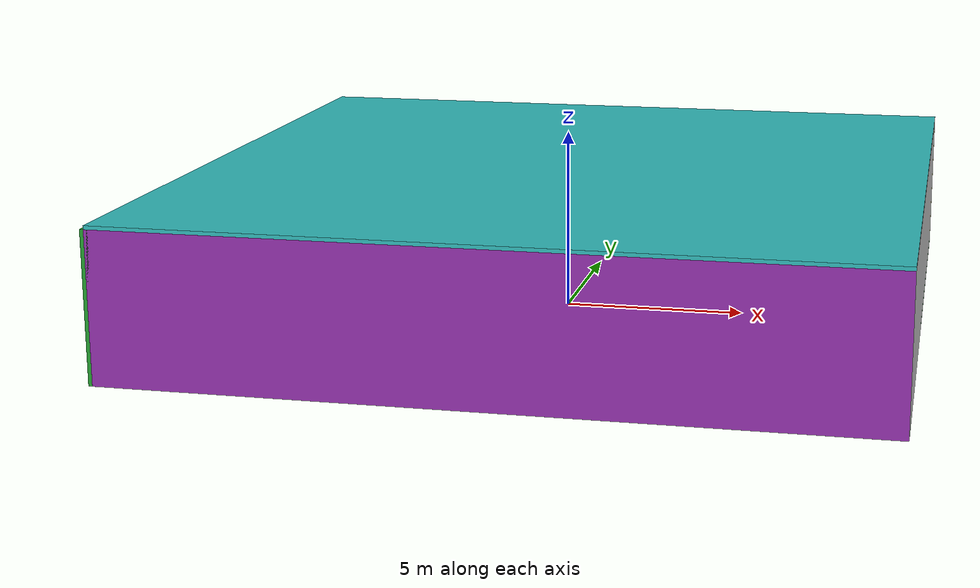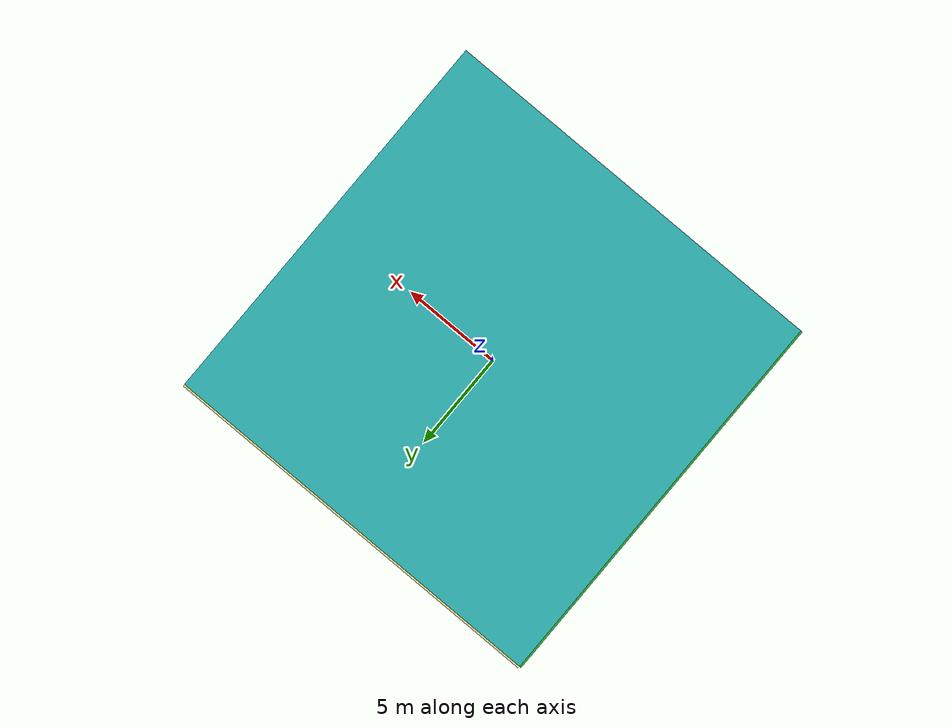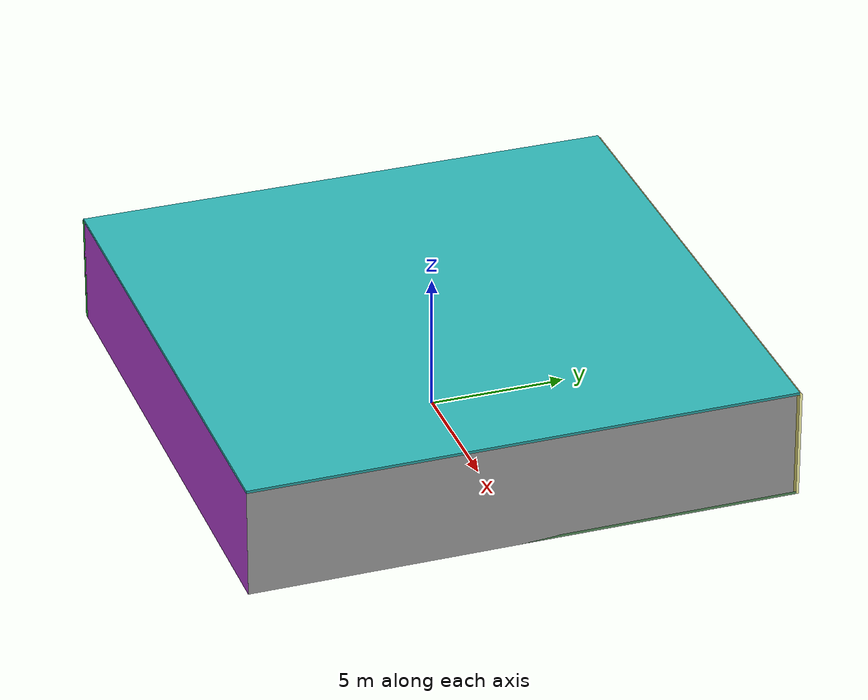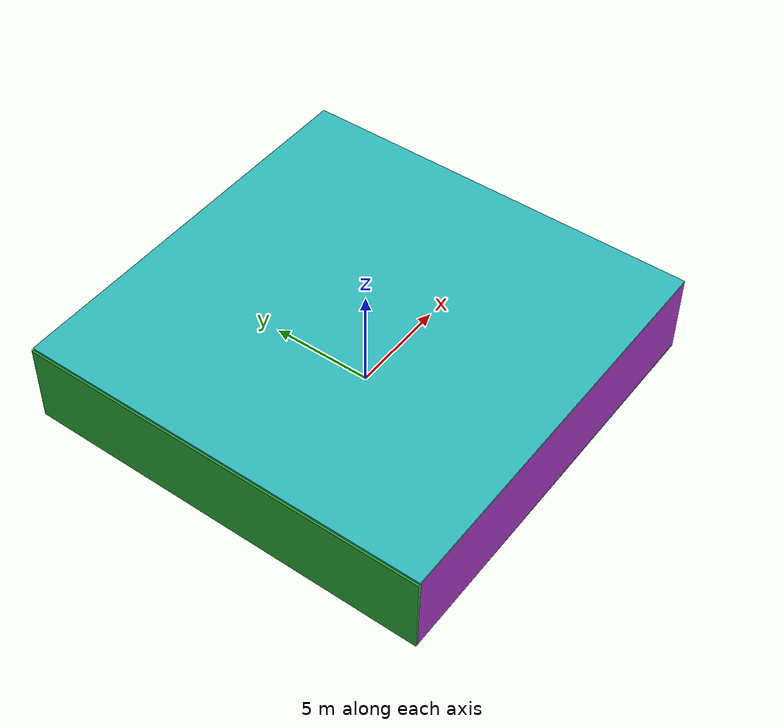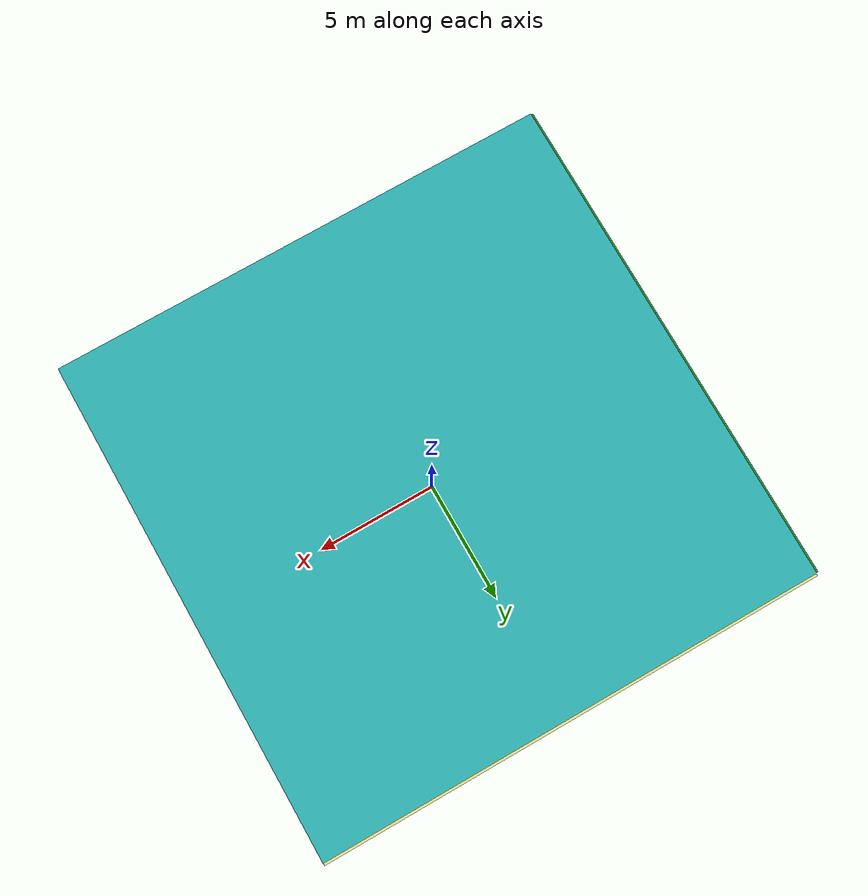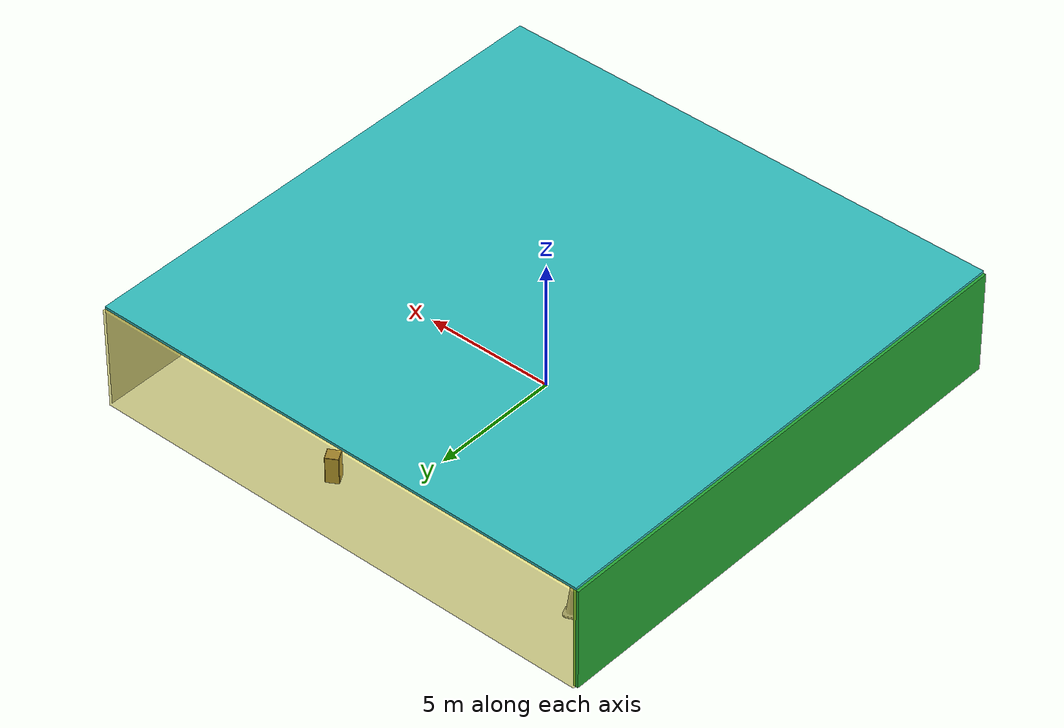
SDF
<sdf version="1.4">
 <world name="default">
  <physics type="ode">
   <max_step_size>0.001</max_step_size>
   <real_time_factor>1</real_time_factor>
   <real_time_update_rate>1000</real_time_update_rate>
   <gravity>0 0 -9.8</gravity>
  </physics>
  <scene><ambient>0.4 0.4 0.4 1</ambient><background>0.7 0.7 0.7 1</background><shadows>1</shadows></scene>
  <model name="Surrounding">
   <static>1</static>
   <link name="Ceiling">
    <collision name="Ceiling_Collision"><geometry><box><size>20 20 0.1</size></box></geometry></collision>
    <visual name="Ceiling_Visual">
     <geometry><box><size>20 20 0.1</size></box></geometry>
     <material>
      <script>
       <uri>file://media/materials/scripts/gazebo.material</uri>
       <name>Gazebo/TurquoiseGlowOutline</name>
      </script>
     </material>
    </visual>
    <pose>0 0 4.05 0 0 0</pose>
   </link>
   <link name="Wall_South">
    <collision name="Wall_South_Collision">
     <geometry><box><size>20 0 4</size></box></geometry>
     <pose>0 0 2 0 -0 0</pose>
    </collision>
    <visual name="Wall_South_Visual">
     <pose>0 0 2 0 -0 0</pose>
     <geometry><box><size>20 0 4</size></box></geometry>
     <material>
      <script><uri>file://media/materials/scripts/gazebo.material</uri><name>Gazebo/Purple</name></script>
     </material>
    </visual>
    <velocity_decay><linear>0</linear><angular>0</angular></velocity_decay>
    <pose>0 -10 0 0 -0 0</pose>
   </link>
   <link name="Wall_East">
    <collision name="Wall_21_Collision">
     <geometry><box><size>20 0 4</size></box></geometry>
     <pose>0 0 2 0 -0 0</pose>
    </collision>
    <visual name="Wall_21_Visual">
     <pose>0 0 2 0 -0 0</pose>
     <geometry><box><size>20 0 4</size></box></geometry>
     <material>
      <script><uri>file://media/materials/scripts/gazebo.material</uri><name>Gazebo/CloudySky</name></script>
     </material>
    </visual>
    <velocity_decay><linear>0</linear><angular>0</angular></velocity_decay>
    <pose>10 0 0 0 -0 1.5708</pose>
   </link>
   <link name="Wall_North">
    <collision name="Wall_22_Collision">
     <geometry><box><size>20 0.2 4</size></box></geometry>
     <pose>0 0 2 0 -0 0</pose>
    </collision>
    <visual name="Wall_22_Visual">
     <pose>0 0 2 0 -0 0</pose>
     <geometry><box><size>20 0.2 4</size></box></geometry>
     <material>
      <script>
       <uri>file://media/materials/scripts/gazebo.material</uri>
       <name>Gazebo/YellowTransparent</name>
      </script>
     </material>
    </visual>
    <velocity_decay><linear>0</linear><angular>0</angular></velocity_decay>
    <pose>0 10 0 0 -0 0</pose>
   </link>
   <link name="Wall_West">
    <collision name="Wall_23_Collision">
     <geometry><box><size>20 0.2 4</size></box></geometry>
     <pose>0 0 2 0 -0 0</pose>
    </collision>
    <visual name="Wall_23_Visual">
     <pose>0 0 2 0 -0 0</pose>
     <geometry><box><size>20 0.2 4</size></box></geometry>
     <material>
      <script><uri>file://media/materials/scripts/gazebo.material</uri><name>Gazebo/GreenGlow</name></script>
     </material>
    </visual>
    <velocity_decay><linear>0</linear><angular>0</angular></velocity_decay>
    <pose>-10 0 0 0 0 -1.5708</pose>
   </link>
   <link name="Ground_link">
    <collision name="collision">
     <pose>0 0 .05 0 -0 0</pose>
     <geometry><box><size>20 20 0.1</size></box></geometry>
    </collision>
    <visual name="visual">
     <pose>0 0 .05 0 -0 0</pose>
     <geometry><box><size>20 20 0.1</size></box></geometry>
     <material>
      <script><uri>file://media/materials/scripts/gazebo.material</uri><name>Gazebo/GreenTransparent</name></script>
     </material>
    </visual>
   </link>
   <static>1</static>
  </model>
  <spherical_coordinates>
   <surface_model>EARTH_WGS84</surface_model>
   <latitude_deg>0</latitude_deg>
   <longitude_deg>0</longitude_deg>
   <elevation>0</elevation>
   <heading_deg>0</heading_deg>
  </spherical_coordinates>
  <light name="lightball_0" type="diffuse">
   <diffuse>0.8 0.8 0.8 1</diffuse>
   <specular>0.2 0.2 0.2 1</specular>
   <attenuation>
    <range>100</range>
    <constant>0.7</constant>
    <linear>0.01</linear>
    <quadratic>0.001</quadratic>
   </attenuation>
   <direction>-0.5 0.1 -0.9</direction>
   <pose>5.75060049796 -1.88044048596 3.09660536545 0 0 0</pose>
  </light>
  <light name="lightball_1" type="diffuse">
   <diffuse>0.8 0.8 0.8 1</diffuse>
   <specular>0.2 0.2 0.2 1</specular>
   <attenuation>
    <range>100</range>
    <constant>0.7</constant>
    <linear>0.01</linear>
    <quadratic>0.001</quadratic>
   </attenuation>
   <direction>-0.5 0.1 -0.9</direction>
   <pose>2.86365952926 5.92035956816 1.02450479996 0 0 0</pose>
  </light>
  <light name="lightball_2" type="diffuse">
   <diffuse>0.8 0.8 0.8 1</diffuse>
   <specular>0.2 0.2 0.2 1</specular>
   <attenuation>
    <range>100</range>
    <constant>0.7</constant>
    <linear>0.01</linear>
    <quadratic>0.001</quadratic>
   </attenuation>
   <direction>-0.5 0.1 -0.9</direction>
   <pose>-0.761480915949 -5.52113970392 2.53786117692 0 0 0</pose>
  </light>
  <light name="lightball_3" type="diffuse">
   <diffuse>0.8 0.8 0.8 1</diffuse>
   <specular>0.2 0.2 0.2 1</specular>
   <attenuation>
    <range>100</range>
    <constant>0.7</constant>
    <linear>0.01</linear>
    <quadratic>0.001</quadratic>
   </attenuation>
   <direction>-0.5 0.1 -0.9</direction>
   <pose>9.87730090044 0.714278392706 1.37149714776 0 0 0</pose>
  </light>
  <light name="lightball_4" type="diffuse">
   <diffuse>0.8 0.8 0.8 1</diffuse>
   <specular>0.2 0.2 0.2 1</specular>
   <attenuation>
    <range>100</range>
    <constant>0.7</constant>
    <linear>0.01</linear>
    <quadratic>0.001</quadratic>
   </attenuation>
   <direction>-0.5 0.1 -0.9</direction>
   <pose>8.17916490445 -5.0016642218 2.63057641729 0 0 0</pose>
  </light>
  <light name="lightball_5" type="diffuse">
   <diffuse>0.8 0.8 0.8 1</diffuse>
   <specular>0.2 0.2 0.2 1</specular>
   <attenuation>
    <range>100</range>
    <constant>0.7</constant>
    <linear>0.01</linear>
    <quadratic>0.001</quadratic>
   </attenuation>
   <direction>-0.5 0.1 -0.9</direction>
   <pose>5.81580106592 -9.99204590746 1.87935834172 0 0 0</pose>
  </light>
  <light name="lightball_6" type="diffuse">
   <diffuse>0.8 0.8 0.8 1</diffuse>
   <specular>0.2 0.2 0.2 1</specular>
   <attenuation>
    <range>100</range>
    <constant>0.7</constant>
    <linear>0.01</linear>
    <quadratic>0.001</quadratic>
   </attenuation>
   <direction>-0.5 0.1 -0.9</direction>
   <pose>-3.9394576373 7.377724981 1.76935796289 0 0 0</pose>
  </light>
  <light name="lightball_7" type="diffuse">
   <diffuse>0.8 0.8 0.8 1</diffuse>
   <specular>0.2 0.2 0.2 1</specular>
   <attenuation>
    <range>100</range>
    <constant>0.7</constant>
    <linear>0.01</linear>
    <quadratic>0.001</quadratic>
   </attenuation>
   <direction>-0.5 0.1 -0.9</direction>
   <pose>-4.84092715143 0.725293794702 1.71893697912 0 0 0</pose>
  </light>
  <light name="lightball_8" type="diffuse">
   <diffuse>0.8 0.8 0.8 1</diffuse>
   <specular>0.2 0.2 0.2 1</specular>
   <attenuation>
    <range>100</range>
    <constant>0.7</constant>
    <linear>0.01</linear>
    <quadratic>0.001</quadratic>
   </attenuation>
   <direction>-0.5 0.1 -0.9</direction>
   <pose>-6.15311370414 -0.836337943015 3.42353291005 0 0 0</pose>
  </light>
  <include>
   <uri>model://construction_cone</uri>
   <pose>-7.75793281389 7.6230759208 0 0 0 0.41385735875</pose>
  </include>
  <include><uri>model://cabinet</uri><pose>2.08891833768 7.89672901831 0 0 0 2.1077925165</pose></include>
  <include><uri>model://table</uri><pose>4.29532381698 1.3219233686 0 0 0 2.67242715723</pose></include>
  <include>
   <uri>model://textured_shapes</uri>
   <pose>6.8486432196 -1.72359690603 0 0 0 0.227882295924</pose>
  </include>
 </world>
</sdf>

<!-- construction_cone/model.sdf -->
<sdf version="1.5">
  <model name="Construction Cone">
    <link name="link">
      <collision name="collision">
        <geometry>
          <mesh>
            <scale>10 10 10</scale>
            <uri>file://isr-testbed/construction_cone/meshes/construction_cone.dae</uri>
          </mesh>
        </geometry>
      </collision>
      <visual name="visual">
        <geometry>
          <mesh>
            <scale>10 10 10</scale>
            <uri>file://isr-testbed/construction_cone/meshes/construction_cone.dae</uri>
          </mesh>
        </geometry>
      </visual>
    </link>
  </model>
</sdf>

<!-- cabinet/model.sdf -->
<sdf version="1.5">
  <model name="cabinet">
    <static>true</static>
    <link name="cabinet_bottom_plate">
      <inertial>
        <pose>0 0 -1 0 0 0</pose>
        <inertia>
          <ixx>2.050000</ixx>
          <ixy>0</ixy>
          <ixz>0</ixz>
          <iyy>2.050000</iyy>
          <iyz>0</iyz>
          <izz>2.050000</izz>
        </inertia>
        <mass>25.000000</mass>
      </inertial>
      <collision name="cabinet_bottom_plate_geom">
        <pose>0 0 0.010000 0 0 0</pose>
        <geometry>
          <box>
            <size>0.450000 0.450000 0.020000</size>
          </box>
        </geometry>
      </collision>
      <visual name="cabinet_bottom_plate_geom_visual">
        <pose>0 0 0.010000 0 0 0</pose>
        <geometry>
          <box>
            <size>0.450000 0.450000 0.020000</size>
          </box>
        </geometry>
        <material>
          <script>
            <uri>model://media/materials/scripts/gazebo.material</uri>
            <name>Gazebo/Wood</name>
          </script>
        </material>
      </visual>
      <collision name="cabinet_bottom_plate_geom_cabinet_back_plate">
        <pose>0.235000 0 0.510000 0 0 0</pose>
        <geometry>
          <box>
            <size>0.020000 0.450000 1.020000</size>
          </box>
        </geometry>
      </collision>
      <visual name="cabinet_bottom_plate_geom_cabinet_back_plate_visual">
        <pose>0.235000 0 0.510000 0 0 0</pose>
        <geometry>
          <box>
            <size>0.020000 0.450000 1.020000</size>
          </box>
        </geometry>
        <material>
          <script>
            <uri>model://media/materials/scripts/gazebo.material</uri>
            <name>Gazebo/Wood</name>
          </script>
        </material>
      </visual>
      <collision name="cabinet_bottom_plate_geom_cabinet_left_plate">
        <pose>0 0.235000 0.510000 0 0 0</pose>
        <geometry>
          <box>
            <size>0.450000 0.020000 1.020000</size>
          </box>
        </geometry>
      </collision>
      <visual name="cabinet_bottom_plate_geom_cabinet_left_plate_visual">
        <pose>0 0.235000 0.510000 0 0 0</pose>
        <geometry>
          <box>
            <size>0.450000 0.020000 1.020000</size>
          </box>
        </geometry>
        <material>
          <script>
            <uri>model://media/materials/scripts/gazebo.material</uri>
            <name>Gazebo/Wood</name>
          </script>
        </material>
      </visual>
      <collision name="cabinet_bottom_plate_geom_cabinet_middle_plate">
        <pose>0 0 0.510000 0 0 0</pose>
        <geometry>
          <box>
            <size>0.450000 0.450000 0.020000</size>
          </box>
        </geometry>
      </collision>
      <visual name="cabinet_bottom_plate_geom_cabinet_middle_plate_visual">
        <pose>0 0 0.510000 0 0 0</pose>
        <geometry>
          <box>
            <size>0.450000 0.450000 0.020000</size>
          </box>
        </geometry>
        <material>
          <script>
            <uri>model://media/materials/scripts/gazebo.material</uri>
            <name>Gazebo/Wood</name>
          </script>
        </material>
      </visual>
      <collision name="cabinet_bottom_plate_geom_cabinet_right_plate">
        <pose>0 -0.235000 0.510000 0 0 0</pose>
        <geometry>
          <box>
            <size>0.450000 0.020000 1.020000</size>
          </box>
        </geometry>
      </collision>
      <visual name="cabinet_bottom_plate_geom_cabinet_right_plate_visual">
        <pose>0 -0.235000 0.510000 0 0 0</pose>
        <geometry>
          <box>
            <size>0.450000 0.020000 1.020000</size>
          </box>
        </geometry>
        <material>
          <script>
            <uri>model://media/materials/scripts/gazebo.material</uri>
            <name>Gazebo/Wood</name>
          </script>
        </material>
      </visual>
      <collision name="cabinet_bottom_plate_geom_cabinet_top_plate">
        <pose>0 0 1.010000 0 0 0</pose>
        <geometry>
          <box>
            <size>0.450000 0.450000 0.020000</size>
          </box>
        </geometry>
      </collision>
      <visual name="cabinet_bottom_plate_geom_cabinet_top_plate_visual">
        <pose>0 0 1.010000 0 0 0</pose>
        <geometry>
          <box>
            <size>0.450000 0.450000 0.020000</size>
          </box>
        </geometry>
        <material>
          <script>
            <uri>model://media/materials/scripts/gazebo.material</uri>
            <name>Gazebo/Wood</name>
          </script>
        </material>
      </visual>
    </link>
  </model>
</sdf>

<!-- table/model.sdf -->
<sdf version="1.5">
  <model name="table">
    <static>true</static>
    <link name="link">
      <collision name="surface">
        <pose>0 0 1.0 0 0 0</pose>
        <geometry>
          <box>
            <size>1.5 0.8 0.03</size>
          </box>
        </geometry>
        <surface>
          <friction>
            <ode>
              <mu>0.6</mu>
              <mu2>0.6</mu2>
            </ode>
          </friction>
        </surface>
      </collision>
      <visual name="visual1">
        <pose>0 0 1.0 0 0 0</pose>
        <geometry>
          <box>
            <size>1.5 0.8 0.03</size>
          </box>
        </geometry>
        <material>
          <script>
            <uri>model://media/materials/scripts/gazebo.material</uri>
            <name>Gazebo/Wood</name>
          </script>
        </material>
      </visual>
      <collision name="front_left_leg">
        <pose>0.68 0.38 0.5 0 0 0</pose>
        <geometry>
          <cylinder>
            <radius>0.02</radius>
            <length>1.0</length>
          </cylinder>
        </geometry>
      </collision>
      <visual name="front_left_leg">
        <pose>0.68 0.38 0.5 0 0 0</pose>
        <geometry>
          <cylinder>
            <radius>0.02</radius>
            <length>1.0</length>
          </cylinder>
        </geometry>
        <material>
          <script>
            <uri>model://media/materials/scripts/gazebo.material</uri>
            <name>Gazebo/Grey</name>
          </script>
        </material>
      </visual>
      <collision name="front_right_leg">
        <pose>0.68 -0.38 0.5 0 0 0</pose>
        <geometry>
          <cylinder>
            <radius>0.02</radius>
            <length>1.0</length>
          </cylinder>
        </geometry>
      </collision>
      <visual name="front_right_leg">
        <pose>0.68 -0.38 0.5 0 0 0</pose>
        <geometry>
          <cylinder>
            <radius>0.02</radius>
            <length>1.0</length>
          </cylinder>
        </geometry>
        <material>
          <script>
            <uri>model://media/materials/scripts/gazebo.material</uri>
            <name>Gazebo/Grey</name>
          </script>
        </material>
      </visual>
      <collision name="back_right_leg">
        <pose>-0.68 -0.38 0.5 0 0 0</pose>
        <geometry>
          <cylinder>
            <radius>0.02</radius>
            <length>1.0</length>
          </cylinder>
        </geometry>
      </collision>
      <visual name="back_right_leg">
        <pose>-0.68 -0.38 0.5 0 0 0</pose>
        <geometry>
          <cylinder>
            <radius>0.02</radius>
            <length>1.0</length>
          </cylinder>
        </geometry>
        <material>
          <script>
            <uri>model://media/materials/scripts/gazebo.material</uri>
            <name>Gazebo/Grey</name>
          </script>
        </material>
      </visual>
      <collision name="back_left_leg">
        <pose>-0.68 0.38 0.5 0 0 0</pose>
        <geometry>
          <cylinder>
            <radius>0.02</radius>
            <length>1.0</length>
          </cylinder>
        </geometry>
      </collision>
      <visual name="back_left_leg">
        <pose>-0.68 0.38 0.5 0 0 0</pose>
        <geometry>
          <cylinder>
            <radius>0.02</radius>
            <length>1.0</length>
          </cylinder>
        </geometry>
        <material>
          <script>
            <uri>model://media/materials/scripts/gazebo.material</uri>
            <name>Gazebo/Grey</name>
          </script>
        </material>
      </visual>
    </link>
  </model>
</sdf>

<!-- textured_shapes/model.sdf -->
<sdf version="1.6">
  <model name="textured_shapes">
    <pose>0 0 0.5 0 0 0</pose>
    <link name="box">
      <pose>0 -1.5 0 0 0 0</pose>
      <collision name="collision">
        <geometry>
          <box>
            <size>1 1 1</size>
          </box>
        </geometry>
      </collision>
      <visual name="visual">
        <geometry>
          <box>
            <size>1 1 1</size>
          </box>
        </geometry>
        <material>
          <script>
            <uri>model://../model_source/models/textured_shapes/materials/scripts</uri>
            <uri>model://../model_source/models/textured_shapes/materials/textures</uri>
            <name>TexturedShape/Squares</name>
          </script>
        </material>
      </visual>
    </link>
    <link name="sphere">
      <collision name="collision">
        <geometry>
          <sphere>
            <radius>0.5</radius>
          </sphere>
        </geometry>
      </collision>
      <visual name="visual">
        <geometry>
          <sphere>
            <radius>0.5</radius>
          </sphere>
        </geometry>
        <material>
          <script>
            <uri>model://../model_source/models/textured_shapes/materials/scripts</uri>
            <uri>model://../model_source/models/textured_shapes/materials/textures</uri>
            <name>TexturedShape/Squares</name>
          </script>
        </material>
      </visual>
    </link>
    <link name="cylinder">
      <pose>0 1.5 0 0 0 0</pose>
      <collision name="collision">
        <geometry>
          <cylinder>
            <radius>0.5</radius>
            <length>1</length>
          </cylinder>
        </geometry>
      </collision>
      <visual name="visual">
        <geometry>
          <cylinder>
            <radius>0.5</radius>
            <length>1</length>
          </cylinder>
        </geometry>
        <material>
          <script>
            <uri>model://../model_source/models/textured_shapes/materials/scripts</uri>
            <uri>model://../model_source/models/textured_shapes/materials/textures</uri>
            <name>TexturedShape/Squares</name>
          </script>
        </material>
      </visual>
    </link>
  </model>
</sdf>
